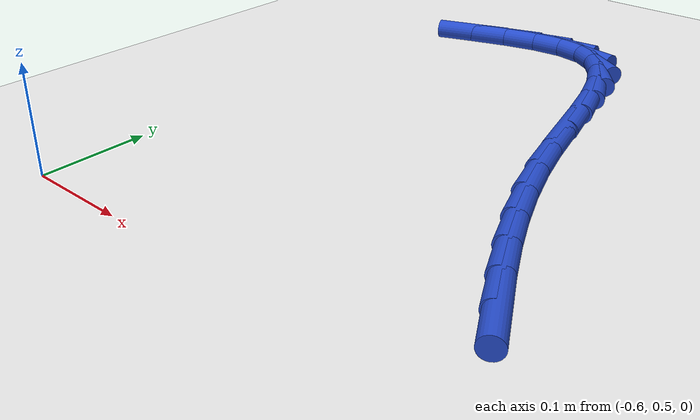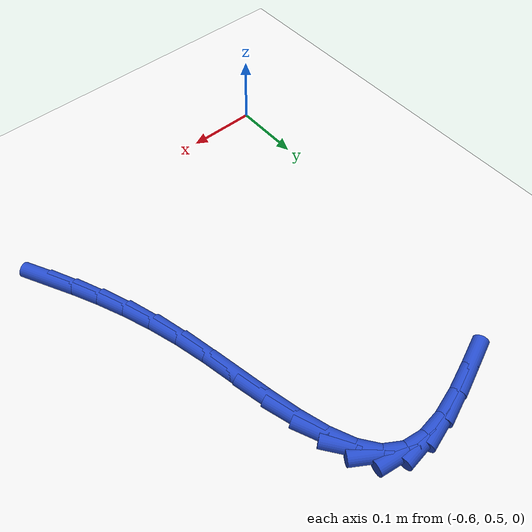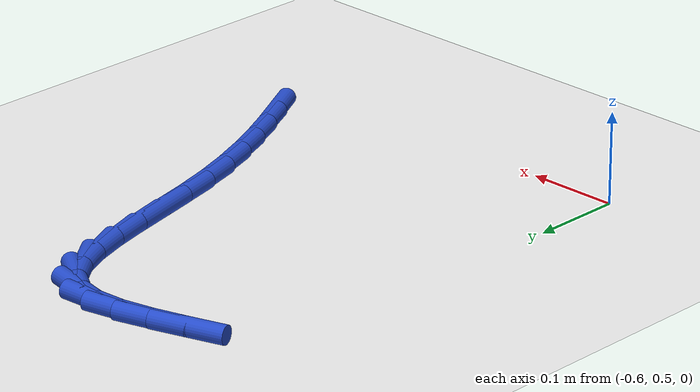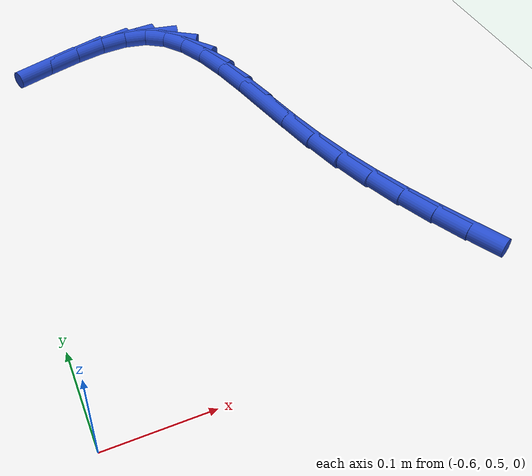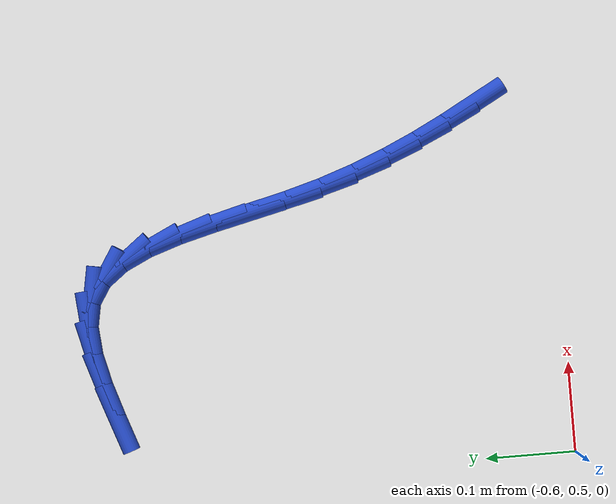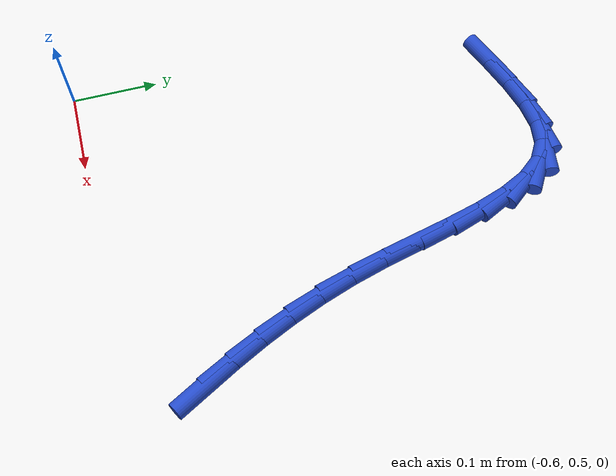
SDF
<sdf version="1.6">
 <world name="default">
  <model name="ground_plane">
   <static>1</static>
   <link name="link">
    <collision name="collision">
     <geometry><plane><normal>0 0 1</normal><size>100 100</size></plane></geometry>
     <surface><friction><ode><mu>100</mu><mu2>50</mu2></ode></friction></surface>
    </collision>
    <visual name="visual">
     <cast_shadows>0</cast_shadows>
     <geometry><plane><normal>0 0 1</normal><size>100 100</size></plane></geometry>
     <material>
      <script><uri>file://media/materials/scripts/gazebo.material</uri><name>Gazebo/WhiteGlow</name></script>
     </material>
    </visual>
   </link>
  </model>
  <model name="line">
   <link name="link_18">
    <pose>-0.20622113477309573 0.5840189734251643 0.01 0 1.57 -1.0708933258021032</pose>
    <collision name="collision">
     <geometry><cylinder><radius>0.01</radius><length>0.08</length></cylinder></geometry>
    </collision>
    <visual name="visual">
     <material>
      <script><name>Gazebo/Blue</name><uri>file://media/materials/scripts/gazebo.material</uri></script>
     </material>
     <geometry><cylinder><radius>0.01</radius><length>0.08</length></cylinder></geometry>
    </visual>
   </link>
   <link name="link_19">
    <pose>-0.22369173827874345 0.6160060727495263 0.01 0 1.57 -1.104653052175301</pose>
    <collision name="collision">
     <geometry><cylinder><radius>0.01</radius><length>0.08</length></cylinder></geometry>
    </collision>
    <visual name="visual">
     <material>
      <script><name>Gazebo/Blue</name><uri>file://media/materials/scripts/gazebo.material</uri></script>
     </material>
     <geometry><cylinder><radius>0.01</radius><length>0.08</length></cylinder></geometry>
    </visual>
   </link>
   <link name="link_20">
    <pose>-0.24038713752559812 0.649189574828473 0.01 0 1.57 -1.14514684547393</pose>
    <collision name="collision">
     <geometry><cylinder><radius>0.01</radius><length>0.08</length></cylinder></geometry>
    </collision>
    <visual name="visual">
     <material>
      <script><name>Gazebo/Blue</name><uri>file://media/materials/scripts/gazebo.material</uri></script>
     </material>
     <geometry><cylinder><radius>0.01</radius><length>0.08</length></cylinder></geometry>
    </visual>
   </link>
   <link name="link_21">
    <pose>-0.25607090903317425 0.6837836445864618 0.01 0 1.57 -1.1915235009625469</pose>
    <collision name="collision">
     <geometry><cylinder><radius>0.01</radius><length>0.08</length></cylinder></geometry>
    </collision>
    <visual name="visual">
     <material>
      <script><name>Gazebo/Blue</name><uri>file://media/materials/scripts/gazebo.material</uri></script>
     </material>
     <geometry><cylinder><radius>0.01</radius><length>0.08</length></cylinder></geometry>
    </visual>
   </link>
   <link name="link_22">
    <pose>-0.27050662932098646 0.7200024469479507 0.01 0 1.57 -1.2427839783461925</pose>
    <collision name="collision">
     <geometry><cylinder><radius>0.01</radius><length>0.08</length></cylinder></geometry>
    </collision>
    <visual name="visual">
     <material>
      <script><name>Gazebo/Blue</name><uri>file://media/materials/scripts/gazebo.material</uri></script>
     </material>
     <geometry><cylinder><radius>0.01</radius><length>0.08</length></cylinder></geometry>
    </visual>
   </link>
   <link name="link_23">
    <pose>-0.2834578749085493 0.7580601468373972 0.01 0 1.57 -1.2970016770641377</pose>
    <collision name="collision">
     <geometry><cylinder><radius>0.01</radius><length>0.08</length></cylinder></geometry>
    </collision>
    <visual name="visual">
     <material>
      <script><name>Gazebo/Blue</name><uri>file://media/materials/scripts/gazebo.material</uri></script>
     </material>
     <geometry><cylinder><radius>0.01</radius><length>0.08</length></cylinder></geometry>
    </visual>
   </link>
   <link name="link_24">
    <pose>-0.29471231918555835 0.7981332619435436 0.01 0 1.57 -1.3354436142135362</pose>
    <collision name="collision">
     <geometry><cylinder><radius>0.01</radius><length>0.08</length></cylinder></geometry>
    </collision>
    <visual name="visual">
     <material>
      <script><name>Gazebo/Blue</name><uri>file://media/materials/scripts/gazebo.material</uri></script>
     </material>
     <geometry><cylinder><radius>0.01</radius><length>0.08</length></cylinder></geometry>
    </visual>
   </link>
   <link name="link_25">
    <pose>-0.30463211362388926 0.8395007862680156 0.01 0 1.57 -1.3424743260878873</pose>
    <collision name="collision">
     <geometry><cylinder><radius>0.01</radius><length>0.08</length></cylinder></geometry>
    </collision>
    <visual name="visual">
     <material>
      <script><name>Gazebo/Blue</name><uri>file://media/materials/scripts/gazebo.material</uri></script>
     </material>
     <geometry><cylinder><radius>0.01</radius><length>0.08</length></cylinder></geometry>
    </visual>
   </link>
   <link name="link_26">
    <pose>-0.3141653682346374 0.8805262538759628 0.01 0 1.57 -1.316915009802149</pose>
    <collision name="collision">
     <geometry><cylinder><radius>0.01</radius><length>0.08</length></cylinder></geometry>
    </collision>
    <visual name="visual">
     <material>
      <script><name>Gazebo/Blue</name><uri>file://media/materials/scripts/gazebo.material</uri></script>
     </material>
     <geometry><cylinder><radius>0.01</radius><length>0.08</length></cylinder></geometry>
    </visual>
   </link>
   <link name="link_27">
    <pose>-0.3242865862723072 0.9195319639066547 0.01 0 1.57 -1.2512326649928887</pose>
    <collision name="collision">
     <geometry><cylinder><radius>0.01</radius><length>0.08</length></cylinder></geometry>
    </collision>
    <visual name="visual">
     <material>
      <script><name>Gazebo/Blue</name><uri>file://media/materials/scripts/gazebo.material</uri></script>
     </material>
     <geometry><cylinder><radius>0.01</radius><length>0.08</length></cylinder></geometry>
    </visual>
   </link>
   <link name="link_28">
    <pose>-0.3359702709914028 0.95484021549936 0.01 0 1.57 -1.1272815975000887</pose>
    <collision name="collision">
     <geometry><cylinder><radius>0.01</radius><length>0.08</length></cylinder></geometry>
    </collision>
    <visual name="visual">
     <material>
      <script><name>Gazebo/Blue</name><uri>file://media/materials/scripts/gazebo.material</uri></script>
     </material>
     <geometry><cylinder><radius>0.01</radius><length>0.08</length></cylinder></geometry>
    </visual>
   </link>
   <link name="link_29">
    <pose>-0.35019092564642823 0.9847733077933484 0.01 0 1.57 -0.9114876799549118</pose>
    <collision name="collision">
     <geometry><cylinder><radius>0.01</radius><length>0.08</length></cylinder></geometry>
    </collision>
    <visual name="visual">
     <material>
      <script><name>Gazebo/Blue</name><uri>file://media/materials/scripts/gazebo.material</uri></script>
     </material>
     <geometry><cylinder><radius>0.01</radius><length>0.08</length></cylinder></geometry>
    </visual>
   </link>
   <link name="link_30">
    <pose>-0.3679230534918876 1.0076535399278885 0.01 0 1.57 -0.5674269223670447</pose>
    <collision name="collision">
     <geometry><cylinder><radius>0.01</radius><length>0.08</length></cylinder></geometry>
    </collision>
    <visual name="visual">
     <material>
      <script><name>Gazebo/Blue</name><uri>file://media/materials/scripts/gazebo.material</uri></script>
     </material>
     <geometry><cylinder><radius>0.01</radius><length>0.08</length></cylinder></geometry>
    </visual>
   </link>
   <link name="link_31">
    <pose>-0.39013700569453613 1.0218114761537689 0.01 0 1.57 -0.17878044460456757</pose>
    <collision name="collision">
     <geometry><cylinder><radius>0.01</radius><length>0.08</length></cylinder></geometry>
    </collision>
    <visual name="visual">
     <material>
      <script><name>Gazebo/Blue</name><uri>file://media/materials/scripts/gazebo.material</uri></script>
     </material>
     <geometry><cylinder><radius>0.01</radius><length>0.08</length></cylinder></geometry>
    </visual>
   </link>
   <link name="link_32">
    <pose>-0.4172351157093001 1.0267083720792871 0.01 0 1.57 0.08406990753217967</pose>
    <collision name="collision">
     <geometry><cylinder><radius>0.01</radius><length>0.08</length></cylinder></geometry>
    </collision>
    <visual name="visual">
     <material>
      <script><name>Gazebo/Blue</name><uri>file://media/materials/scripts/gazebo.material</uri></script>
     </material>
     <geometry><cylinder><radius>0.01</radius><length>0.08</length></cylinder></geometry>
    </visual>
   </link>
   <link name="link_33">
    <pose>-0.4484793615662948 1.02407546538631 0.01 0 1.57 0.23215058015567583</pose>
    <collision name="collision">
     <geometry><cylinder><radius>0.01</radius><length>0.08</length></cylinder></geometry>
    </collision>
    <visual name="visual">
     <material>
      <script><name>Gazebo/Blue</name><uri>file://media/materials/scripts/gazebo.material</uri></script>
     </material>
     <geometry><cylinder><radius>0.01</radius><length>0.08</length></cylinder></geometry>
    </visual>
   </link>
   <link name="link_34">
    <pose>-0.4829953591120713 1.015915435191075 0.01 0 1.57 0.3065591736147325</pose>
    <collision name="collision">
     <geometry><cylinder><radius>0.01</radius><length>0.08</length></cylinder></geometry>
    </collision>
    <visual name="visual">
     <material>
      <script><name>Gazebo/Blue</name><uri>file://media/materials/scripts/gazebo.material</uri></script>
     </material>
     <geometry><cylinder><radius>0.01</radius><length>0.08</length></cylinder></geometry>
    </visual>
   </link>
   <link name="link_35">
    <pose>-0.5199087241931807 1.0042309606098208 0.01 0 1.57 0.33095053188766144</pose>
    <collision name="collision">
     <geometry><cylinder><radius>0.01</radius><length>0.08</length></cylinder></geometry>
    </collision>
    <visual name="visual">
     <material>
      <script><name>Gazebo/Blue</name><uri>file://media/materials/scripts/gazebo.material</uri></script>
     </material>
     <geometry><cylinder><radius>0.01</radius><length>0.08</length></cylinder></geometry>
    </visual>
   </link>
  </model>
 </world>
</sdf>
